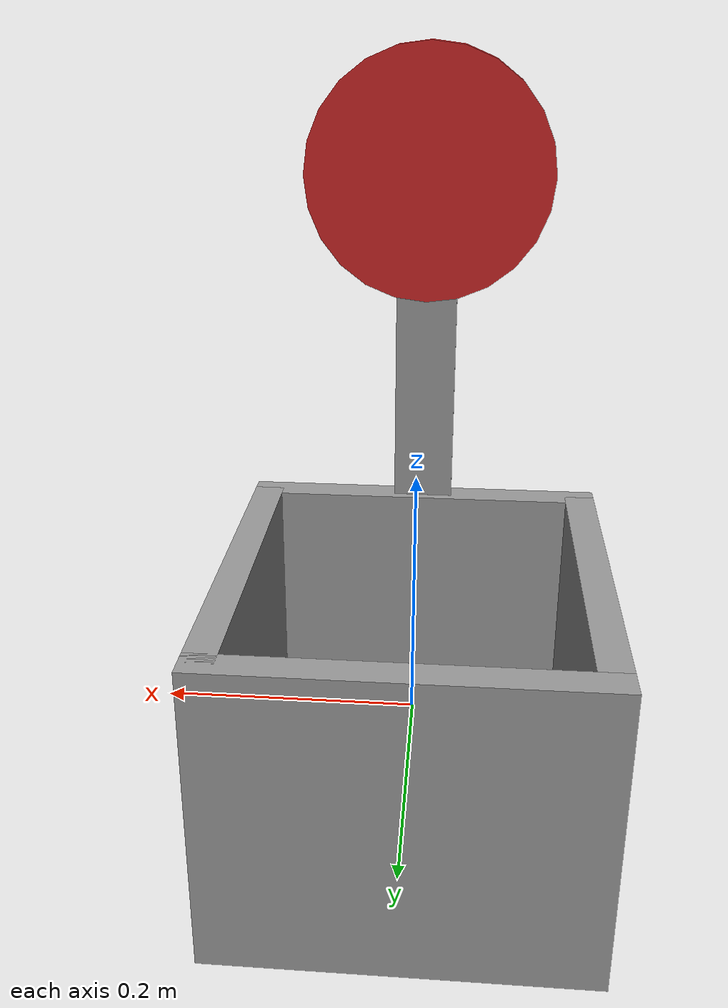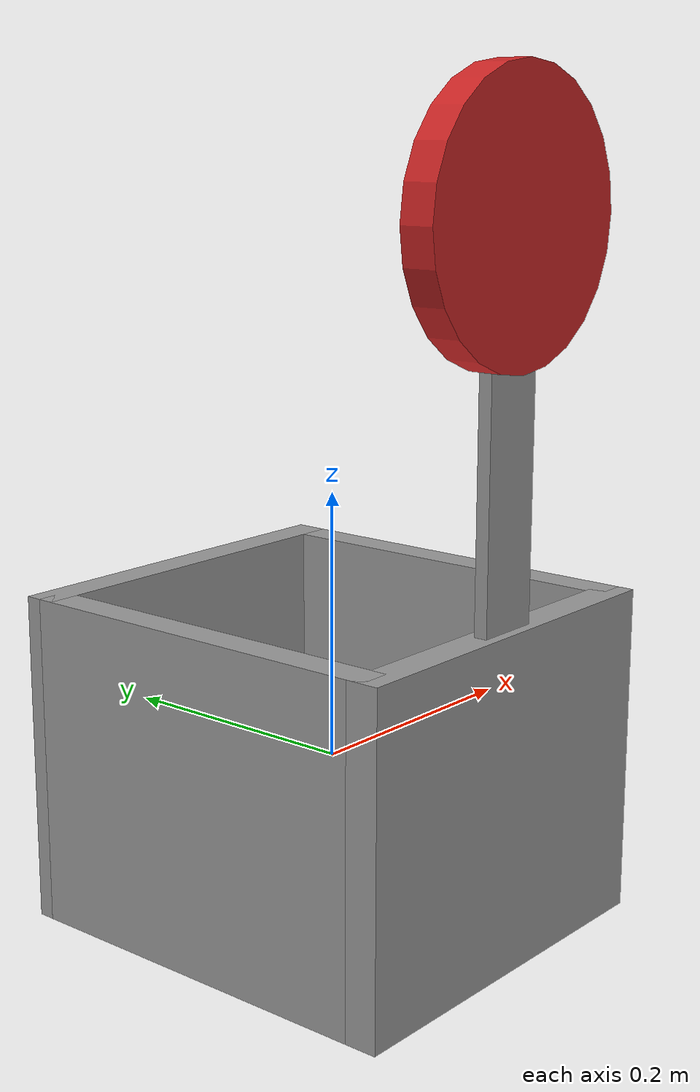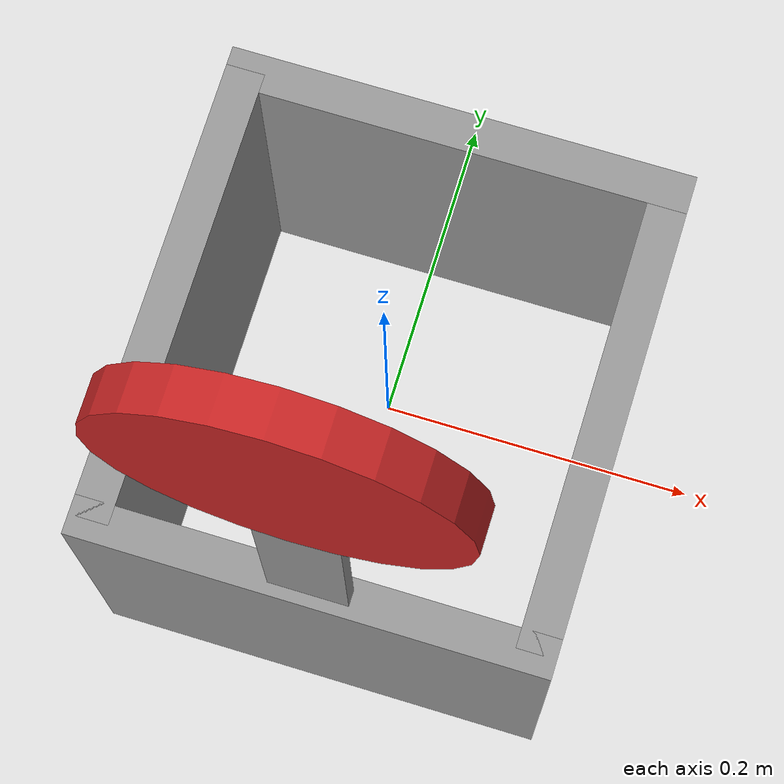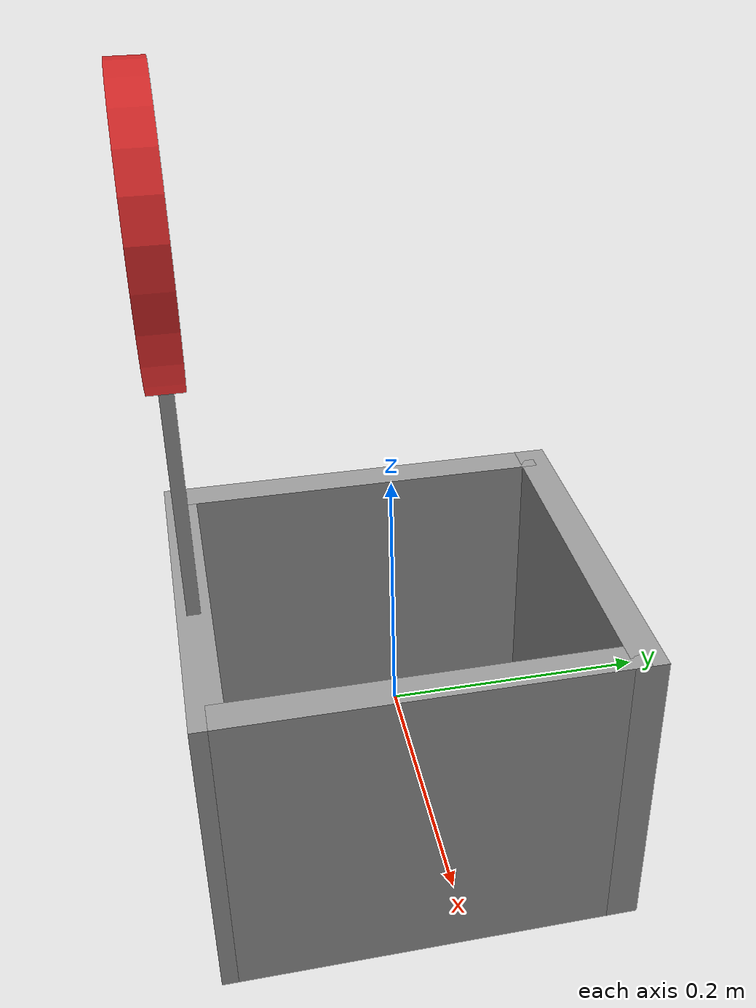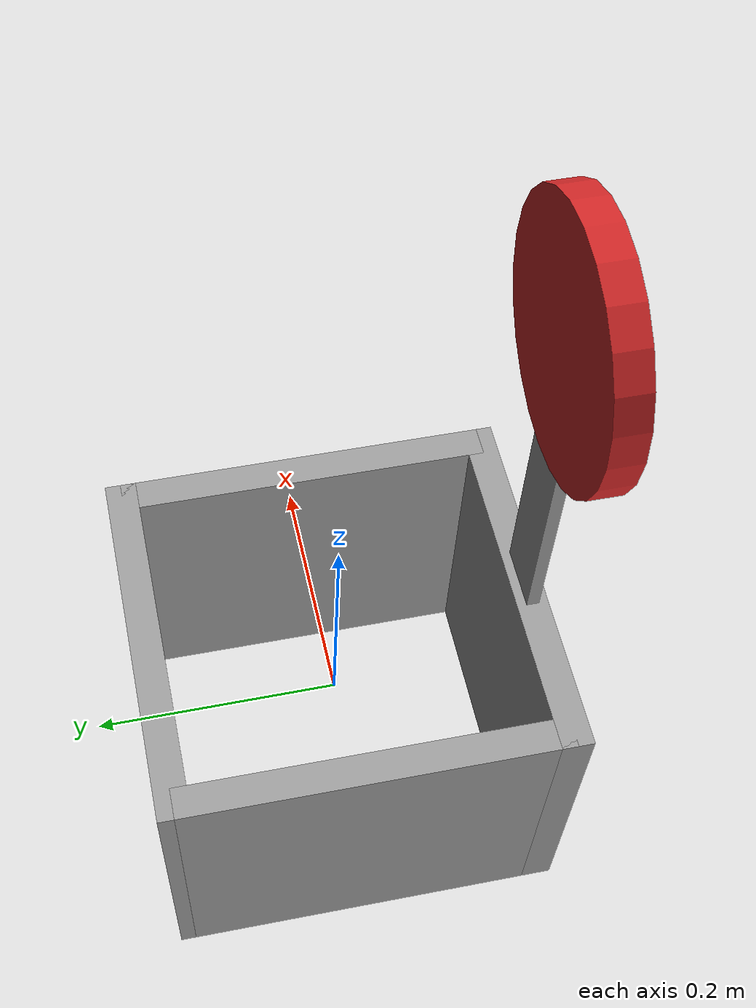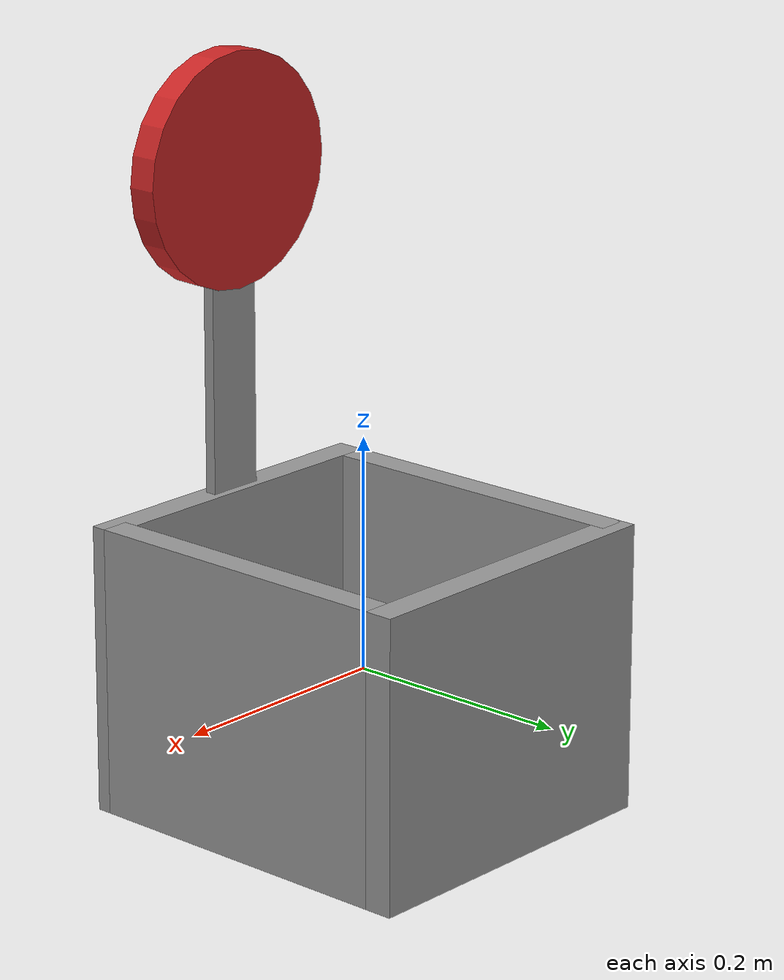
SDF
<?xml version='1.0'?>
<sdf version='1.6'>
  <model name='my_bucket'>
    <link name='link_1'>
      <pose frame=''>0 -0.15 0 0 -0 0</pose>
      <inertial>
        <mass>1</mass>
        <inertia>
          <ixx>0.166667</ixx>
          <ixy>0</ixy>
          <ixz>0</ixz>
          <iyy>0.166667</iyy>
          <iyz>0</iyz>
          <izz>0.166667</izz>
        </inertia>
        <pose frame=''>0 0 0 0 -0 0</pose>
      </inertial>
      <self_collide>0</self_collide>
      <kinematic>0</kinematic>
      <visual name='visual'>
        <pose frame=''>0 0 0 0 -0 0</pose>
        <geometry>
          <box>
            <size>0.3 0.025 0.25</size>
          </box>
        </geometry>
        <material>
          <lighting>1</lighting>
          <script>
            <uri>file://media/materials/scripts/gazebo.material</uri>
            <name>Gazebo/Grey</name>
          </script>
          <shader type='pixel'>
            <normal_map>__default__</normal_map>
          </shader>
          <ambient>0.3 0.3 0.3 1</ambient>
          <diffuse>0.7 0.7 0.7 1</diffuse>
          <specular>0.01 0.01 0.01 1</specular>
          <emissive>0 0 0 1</emissive>
        </material>
        <transparency>0</transparency>
        <cast_shadows>1</cast_shadows>
      </visual>
      <collision name='collision'>
        <laser_retro>0</laser_retro>
        <max_contacts>10</max_contacts>
        <pose frame=''>0 0 0 0 -0 0</pose>
        <geometry>
          <box>
            <size>0.3 0.025 0.25</size>
          </box>
        </geometry>
        <surface>
          <friction>
            <ode>
              <mu>1</mu>
              <mu2>1</mu2>
              <fdir1>0 0 0</fdir1>
              <slip1>0</slip1>
              <slip2>0</slip2>
            </ode>
            <torsional>
              <coefficient>1</coefficient>
              <patch_radius>0</patch_radius>
              <surface_radius>0</surface_radius>
              <use_patch_radius>1</use_patch_radius>
              <ode>
                <slip>0</slip>
              </ode>
            </torsional>
          </friction>
          <bounce>
            <restitution_coefficient>0</restitution_coefficient>
            <threshold>1e+06</threshold>
          </bounce>
          <contact>
            <collide_without_contact>0</collide_without_contact>
            <collide_without_contact_bitmask>1</collide_without_contact_bitmask>
            <collide_bitmask>1</collide_bitmask>
            <ode>
              <soft_cfm>0</soft_cfm>
              <soft_erp>0.2</soft_erp>
              <kp>1e+13</kp>
              <kd>1</kd>
              <max_vel>0.01</max_vel>
              <min_depth>0</min_depth>
            </ode>
            <bullet>
              <split_impulse>1</split_impulse>
              <split_impulse_penetration_threshold>-0.01</split_impulse_penetration_threshold>
              <soft_cfm>0</soft_cfm>
              <soft_erp>0.2</soft_erp>
              <kp>1e+13</kp>
              <kd>1</kd>
            </bullet>
          </contact>
        </surface>
      </collision>
    </link>
    <link name='link_1_clone'>
      <pose frame=''>-0 0.15 -0 0 -0 0</pose>
      <inertial>
        <mass>1</mass>
        <inertia>
          <ixx>0.166667</ixx>
          <ixy>0</ixy>
          <ixz>0</ixz>
          <iyy>0.166667</iyy>
          <iyz>0</iyz>
          <izz>0.166667</izz>
        </inertia>
        <pose frame=''>0 0 0 0 -0 0</pose>
      </inertial>
      <self_collide>0</self_collide>
      <kinematic>0</kinematic>
      <visual name='visual'>
        <pose frame=''>0 0 0 0 -0 0</pose>
        <geometry>
          <box>
            <size>0.3 0.025 0.25</size>
          </box>
        </geometry>
        <material>
          <lighting>1</lighting>
          <script>
            <uri>file://media/materials/scripts/gazebo.material</uri>
            <name>Gazebo/Grey</name>
          </script>
          <shader type='pixel'>
            <normal_map>__default__</normal_map>
          </shader>
          <ambient>0.3 0.3 0.3 1</ambient>
          <diffuse>0.7 0.7 0.7 1</diffuse>
          <specular>0.01 0.01 0.01 1</specular>
          <emissive>0 0 0 1</emissive>
        </material>
        <transparency>0</transparency>
        <cast_shadows>1</cast_shadows>
      </visual>
      <collision name='collision'>
        <laser_retro>0</laser_retro>
        <max_contacts>10</max_contacts>
        <pose frame=''>0 0 0 0 -0 0</pose>
        <geometry>
          <box>
            <size>0.3 0.025 0.25</size>
          </box>
        </geometry>
        <surface>
          <friction>
            <ode>
              <mu>1</mu>
              <mu2>1</mu2>
              <fdir1>0 0 0</fdir1>
              <slip1>0</slip1>
              <slip2>0</slip2>
            </ode>
            <torsional>
              <coefficient>1</coefficient>
              <patch_radius>0</patch_radius>
              <surface_radius>0</surface_radius>
              <use_patch_radius>1</use_patch_radius>
              <ode>
                <slip>0</slip>
              </ode>
            </torsional>
          </friction>
          <bounce>
            <restitution_coefficient>0</restitution_coefficient>
            <threshold>1e+06</threshold>
          </bounce>
          <contact>
            <collide_without_contact>0</collide_without_contact>
            <collide_without_contact_bitmask>1</collide_without_contact_bitmask>
            <collide_bitmask>1</collide_bitmask>
            <ode>
              <soft_cfm>0</soft_cfm>
              <soft_erp>0.2</soft_erp>
              <kp>1e+13</kp>
              <kd>1</kd>
              <max_vel>0.01</max_vel>
              <min_depth>0</min_depth>
            </ode>
            <bullet>
              <split_impulse>1</split_impulse>
              <split_impulse_penetration_threshold>-0.01</split_impulse_penetration_threshold>
              <soft_cfm>0</soft_cfm>
              <soft_erp>0.2</soft_erp>
              <kp>1e+13</kp>
              <kd>1</kd>
            </bullet>
          </contact>
        </surface>
      </collision>
    </link>
    <link name='link_1_clone_0'>
      <pose frame=''>0.1375 -0 -0 0 -0 0</pose>
      <inertial>
        <mass>1</mass>
        <inertia>
          <ixx>0.166667</ixx>
          <ixy>0</ixy>
          <ixz>0</ixz>
          <iyy>0.166667</iyy>
          <iyz>0</iyz>
          <izz>0.166667</izz>
        </inertia>
        <pose frame=''>0 0 0 0 -0 0</pose>
      </inertial>
      <self_collide>0</self_collide>
      <kinematic>0</kinematic>
      <visual name='visual'>
        <pose frame=''>0 0 0 0 -0 1.5708</pose>
        <geometry>
          <box>
            <size>0.3 0.025 0.25</size>
          </box>
        </geometry>
        <material>
          <lighting>1</lighting>
          <script>
            <uri>file://media/materials/scripts/gazebo.material</uri>
            <name>Gazebo/Grey</name>
          </script>
          <shader type='pixel'>
            <normal_map>__default__</normal_map>
          </shader>
          <ambient>0.3 0.3 0.3 1</ambient>
          <diffuse>0.7 0.7 0.7 1</diffuse>
          <specular>0.01 0.01 0.01 1</specular>
          <emissive>0 0 0 1</emissive>
        </material>
        <transparency>0</transparency>
        <cast_shadows>1</cast_shadows>
      </visual>
      <collision name='collision'>
        <laser_retro>0</laser_retro>
        <max_contacts>10</max_contacts>
        <pose frame=''>0 0 0 0 -0 1.5708</pose>
        <geometry>
          <box>
            <size>0.3 0.025 0.25</size>
          </box>
        </geometry>
        <surface>
          <friction>
            <ode>
              <mu>1</mu>
              <mu2>1</mu2>
              <fdir1>0 0 0</fdir1>
              <slip1>0</slip1>
              <slip2>0</slip2>
            </ode>
            <torsional>
              <coefficient>1</coefficient>
              <patch_radius>0</patch_radius>
              <surface_radius>0</surface_radius>
              <use_patch_radius>1</use_patch_radius>
              <ode>
                <slip>0</slip>
              </ode>
            </torsional>
          </friction>
          <bounce>
            <restitution_coefficient>0</restitution_coefficient>
            <threshold>1e+06</threshold>
          </bounce>
          <contact>
            <collide_without_contact>0</collide_without_contact>
            <collide_without_contact_bitmask>1</collide_without_contact_bitmask>
            <collide_bitmask>1</collide_bitmask>
            <ode>
              <soft_cfm>0</soft_cfm>
              <soft_erp>0.2</soft_erp>
              <kp>1e+13</kp>
              <kd>1</kd>
              <max_vel>0.01</max_vel>
              <min_depth>0</min_depth>
            </ode>
            <bullet>
              <split_impulse>1</split_impulse>
              <split_impulse_penetration_threshold>-0.01</split_impulse_penetration_threshold>
              <soft_cfm>0</soft_cfm>
              <soft_erp>0.2</soft_erp>
              <kp>1e+13</kp>
              <kd>1</kd>
            </bullet>
          </contact>
        </surface>
      </collision>
    </link>
    <link name='link_1_clone_0_clone'>
      <pose frame=''>-0.1375 0 -0 0 -0 0</pose>
      <inertial>
        <mass>1</mass>
        <inertia>
          <ixx>0.166667</ixx>
          <ixy>0</ixy>
          <ixz>0</ixz>
          <iyy>0.166667</iyy>
          <iyz>0</iyz>
          <izz>0.166667</izz>
        </inertia>
        <pose frame=''>0 0 0 0 -0 0</pose>
      </inertial>
      <self_collide>0</self_collide>
      <kinematic>0</kinematic>
      <visual name='visual'>
        <pose frame=''>0 0 0 0 -0 1.5708</pose>
        <geometry>
          <box>
            <size>0.3 0.025 0.25</size>
          </box>
        </geometry>
        <material>
          <lighting>1</lighting>
          <script>
            <uri>file://media/materials/scripts/gazebo.material</uri>
            <name>Gazebo/Grey</name>
          </script>
          <shader type='pixel'>
            <normal_map>__default__</normal_map>
          </shader>
          <ambient>0.3 0.3 0.3 1</ambient>
          <diffuse>0.7 0.7 0.7 1</diffuse>
          <specular>0.01 0.01 0.01 1</specular>
          <emissive>0 0 0 1</emissive>
        </material>
        <transparency>0</transparency>
        <cast_shadows>1</cast_shadows>
      </visual>
      <collision name='collision'>
        <laser_retro>0</laser_retro>
        <max_contacts>10</max_contacts>
        <pose frame=''>0 0 0 0 -0 1.5708</pose>
        <geometry>
          <box>
            <size>0.3 0.025 0.25</size>
          </box>
        </geometry>
        <surface>
          <friction>
            <ode>
              <mu>1</mu>
              <mu2>1</mu2>
              <fdir1>0 0 0</fdir1>
              <slip1>0</slip1>
              <slip2>0</slip2>
            </ode>
            <torsional>
              <coefficient>1</coefficient>
              <patch_radius>0</patch_radius>
              <surface_radius>0</surface_radius>
              <use_patch_radius>1</use_patch_radius>
              <ode>
                <slip>0</slip>
              </ode>
            </torsional>
          </friction>
          <bounce>
            <restitution_coefficient>0</restitution_coefficient>
            <threshold>1e+06</threshold>
          </bounce>
          <contact>
            <collide_without_contact>0</collide_without_contact>
            <collide_without_contact_bitmask>1</collide_without_contact_bitmask>
            <collide_bitmask>1</collide_bitmask>
            <ode>
              <soft_cfm>0</soft_cfm>
              <soft_erp>0.2</soft_erp>
              <kp>1e+13</kp>
              <kd>1</kd>
              <max_vel>0.01</max_vel>
              <min_depth>0</min_depth>
            </ode>
            <bullet>
              <split_impulse>1</split_impulse>
              <split_impulse_penetration_threshold>-0.01</split_impulse_penetration_threshold>
              <soft_cfm>0</soft_cfm>
              <soft_erp>0.2</soft_erp>
              <kp>1e+13</kp>
              <kd>1</kd>
            </bullet>
          </contact>
        </surface>
      </collision>
    </link>
    <link name='link_1_clone_1'>
      <pose frame=''>-0 -0.15 0.2 0 -0 0</pose>
      <inertial>
        <mass>1</mass>
        <inertia>
          <ixx>0.166667</ixx>
          <ixy>0</ixy>
          <ixz>0</ixz>
          <iyy>0.166667</iyy>
          <iyz>0</iyz>
          <izz>0.166667</izz>
        </inertia>
        <pose frame=''>0 0 0 0 -0 0</pose>
      </inertial>
      <self_collide>0</self_collide>
      <kinematic>0</kinematic>
      <visual name='visual'>
        <pose frame=''>0 0 0 0 -0 0</pose>
        <geometry>
          <box>
            <size>0.05 0.01 0.3</size>
          </box>
        </geometry>
        <material>
          <lighting>1</lighting>
          <script>
            <uri>file://media/materials/scripts/gazebo.material</uri>
            <name>Gazebo/Grey</name>
          </script>
          <shader type='pixel'>
            <normal_map>__default__</normal_map>
          </shader>
          <ambient>0.3 0.3 0.3 1</ambient>
          <diffuse>0.7 0.7 0.7 1</diffuse>
          <specular>0.01 0.01 0.01 1</specular>
          <emissive>0 0 0 1</emissive>
        </material>
        <transparency>0</transparency>
        <cast_shadows>1</cast_shadows>
      </visual>
      <collision name='collision'>
        <laser_retro>0</laser_retro>
        <max_contacts>10</max_contacts>
        <pose frame=''>0 0 0 0 -0 0</pose>
        <geometry>
          <box>
            <size>0.05 0.01 0.3</size>
          </box>
        </geometry>
        <surface>
          <friction>
            <ode>
              <mu>1</mu>
              <mu2>1</mu2>
              <fdir1>0 0 0</fdir1>
              <slip1>0</slip1>
              <slip2>0</slip2>
            </ode>
            <torsional>
              <coefficient>1</coefficient>
              <patch_radius>0</patch_radius>
              <surface_radius>0</surface_radius>
              <use_patch_radius>1</use_patch_radius>
              <ode>
                <slip>0</slip>
              </ode>
            </torsional>
          </friction>
          <bounce>
            <restitution_coefficient>0</restitution_coefficient>
            <threshold>1e+06</threshold>
          </bounce>
          <contact>
            <collide_without_contact>0</collide_without_contact>
            <collide_without_contact_bitmask>1</collide_without_contact_bitmask>
            <collide_bitmask>1</collide_bitmask>
            <ode>
              <soft_cfm>0</soft_cfm>
              <soft_erp>0.2</soft_erp>
              <kp>1e+13</kp>
              <kd>1</kd>
              <max_vel>0.01</max_vel>
              <min_depth>0</min_depth>
            </ode>
            <bullet>
              <split_impulse>1</split_impulse>
              <split_impulse_penetration_threshold>-0.01</split_impulse_penetration_threshold>
              <soft_cfm>0</soft_cfm>
              <soft_erp>0.2</soft_erp>
              <kp>1e+13</kp>
              <kd>1</kd>
            </bullet>
          </contact>
        </surface>
      </collision>
    </link>
    <link name='link_2_clone_0_clone'>
      <pose frame=''>-0 -0.15 0.4 0 -0 0</pose>
      <inertial>
        <mass>1</mass>
        <inertia>
          <ixx>0.145833</ixx>
          <ixy>0</ixy>
          <ixz>0</ixz>
          <iyy>0.145833</iyy>
          <iyz>0</iyz>
          <izz>0.125</izz>
        </inertia>
        <pose frame=''>0 0 0 0 -0 0</pose>
      </inertial>
      <self_collide>0</self_collide>
      <kinematic>0</kinematic>
      <gravity>1</gravity>
      <visual name='visual'>
        <pose frame=''>0 0 0 1.5708 -0 0</pose>
        <geometry>
          <cylinder>
            <radius>0.1</radius>
            <length>0.025</length>
          </cylinder>
        </geometry>
        <material>
          <lighting>1</lighting>
          <script>
            <uri>file://media/materials/scripts/gazebo.material</uri>
            <name>Gazebo/Red</name>
          </script>
          <shader type='pixel'>
            <normal_map>__default__</normal_map>
          </shader>
          <ambient>1 0 0 1</ambient>
          <diffuse>1 0 0 1</diffuse>
          <specular>1 0 0 1</specular>
          <emissive>1 0 0 1</emissive>
        </material>
        <transparency>0</transparency>
        <cast_shadows>1</cast_shadows>
      </visual>
      <collision name='collision'>
        <laser_retro>0</laser_retro>
        <max_contacts>10</max_contacts>
        <pose frame=''>0 0 0 1.5708 -0 0</pose>
        <geometry>
          <cylinder>
            <radius>0.1</radius>
            <length>0.025</length>
          </cylinder>
        </geometry>
        <surface>
          <friction>
            <ode>
              <mu>1</mu>
              <mu2>1</mu2>
              <fdir1>0 0 0</fdir1>
              <slip1>0</slip1>
              <slip2>0</slip2>
            </ode>
            <torsional>
              <coefficient>1</coefficient>
              <patch_radius>0</patch_radius>
              <surface_radius>0</surface_radius>
              <use_patch_radius>1</use_patch_radius>
              <ode>
                <slip>0</slip>
              </ode>
            </torsional>
          </friction>
          <bounce>
            <restitution_coefficient>0</restitution_coefficient>
            <threshold>1e+06</threshold>
          </bounce>
          <contact>
            <collide_without_contact>0</collide_without_contact>
            <collide_without_contact_bitmask>1</collide_without_contact_bitmask>
            <collide_bitmask>1</collide_bitmask>
            <ode>
              <soft_cfm>0</soft_cfm>
              <soft_erp>0.2</soft_erp>
              <kp>1e+13</kp>
              <kd>1</kd>
              <max_vel>0.01</max_vel>
              <min_depth>0</min_depth>
            </ode>
            <bullet>
              <split_impulse>1</split_impulse>
              <split_impulse_penetration_threshold>-0.01</split_impulse_penetration_threshold>
              <soft_cfm>0</soft_cfm>
              <soft_erp>0.2</soft_erp>
              <kp>1e+13</kp>
              <kd>1</kd>
            </bullet>
          </contact>
        </surface>
      </collision>
    </link>
    <joint name='link_1_JOINT_0_0' type='fixed'>
      <parent>link_1</parent>
      <child>link_1_clone_1</child>
      <pose frame=''>0 0 0 0 -0 0</pose>
      <physics>
        <ode>
          <limit>
            <cfm>0</cfm>
            <erp>0.2</erp>
          </limit>
          <suspension>
            <cfm>0</cfm>
            <erp>0.2</erp>
          </suspension>
        </ode>
      </physics>
    </joint>
    <joint name='link_1_JOINT_0' type='fixed'>
      <parent>link_1</parent>
      <child>link_1_clone_0_clone</child>
      <pose frame=''>0 0 0 0 -0 0</pose>
      <physics>
        <ode>
          <limit>
            <cfm>0</cfm>
            <erp>0.2</erp>
          </limit>
          <suspension>
            <cfm>0</cfm>
            <erp>0.2</erp>
          </suspension>
        </ode>
      </physics>
    </joint>
    <joint name='link_1_JOINT_1' type='fixed'>
      <parent>link_1</parent>
      <child>link_1_clone_0</child>
      <pose frame=''>0 0 0 0 -0 0</pose>
      <physics>
        <ode>
          <limit>
            <cfm>0</cfm>
            <erp>0.2</erp>
          </limit>
          <suspension>
            <cfm>0</cfm>
            <erp>0.2</erp>
          </suspension>
        </ode>
      </physics>
    </joint>
    <joint name='link_1_clone_1_JOINT_1' type='fixed'>
      <parent>link_1_clone_1</parent>
      <child>link_2_clone_0_clone</child>
      <pose frame=''>0 0 0 0 -0 0</pose>
      <physics>
        <ode>
          <limit>
            <cfm>0</cfm>
            <erp>0.2</erp>
          </limit>
          <suspension>
            <cfm>0</cfm>
            <erp>0.2</erp>
          </suspension>
        </ode>
      </physics>
    </joint>
    <joint name='link_1_clone_JOINT_2' type='fixed'>
      <parent>link_1_clone</parent>
      <child>link_1_clone_0_clone</child>
      <pose frame=''>0 0 0 0 -0 0</pose>
      <physics>
        <ode>
          <limit>
            <cfm>0</cfm>
            <erp>0.2</erp>
          </limit>
          <suspension>
            <cfm>0</cfm>
            <erp>0.2</erp>
          </suspension>
        </ode>
      </physics>
    </joint>
    <joint name='link_1_clone_JOINT_3' type='fixed'>
      <parent>link_1_clone</parent>
      <child>link_1_clone_0</child>
      <pose frame=''>0 0 0 0 -0 0</pose>
      <physics>
        <ode>
          <limit>
            <cfm>0</cfm>
            <erp>0.2</erp>
          </limit>
          <suspension>
            <cfm>0</cfm>
            <erp>0.2</erp>
          </suspension>
        </ode>
      </physics>
    </joint>
    <static>0</static>
    <allow_auto_disable>1</allow_auto_disable>
  </model>
</sdf>
